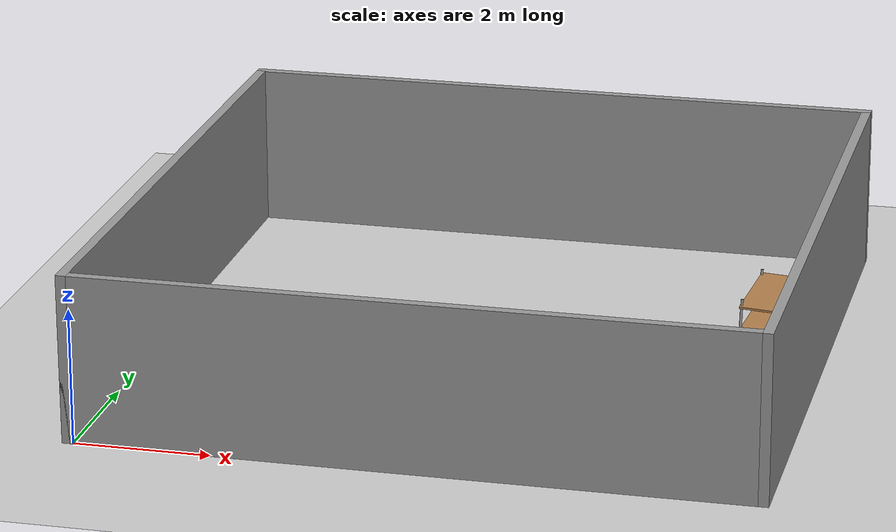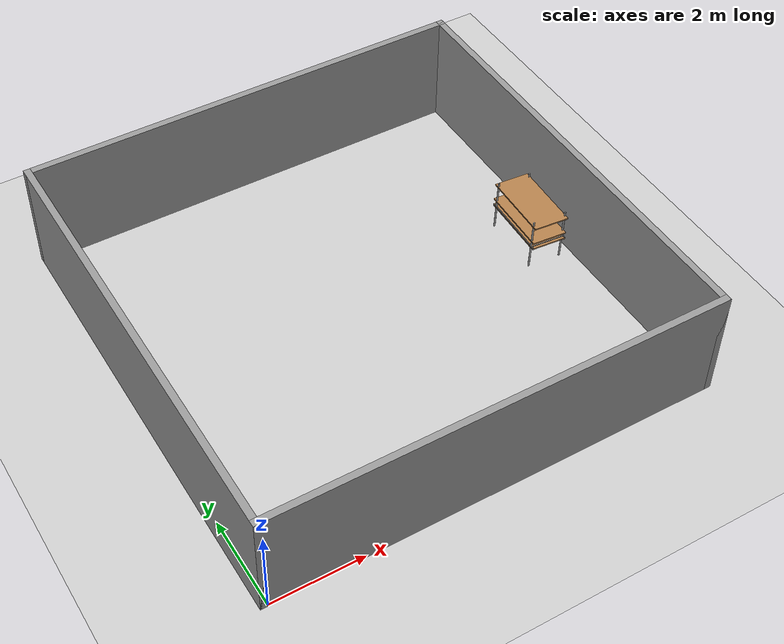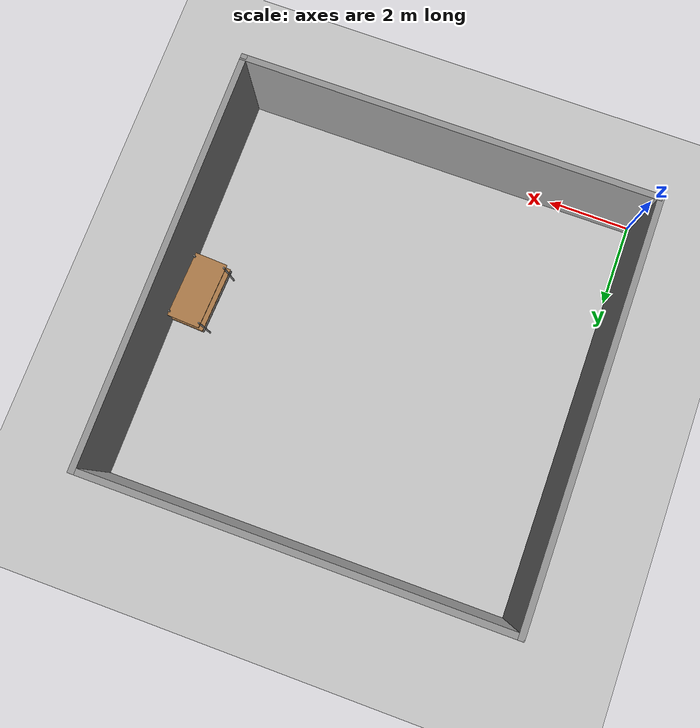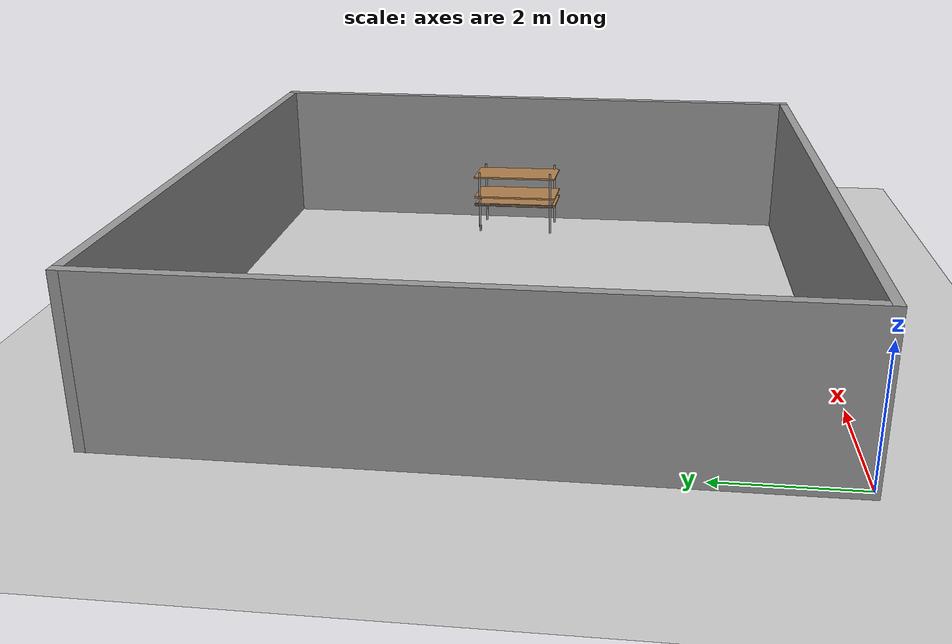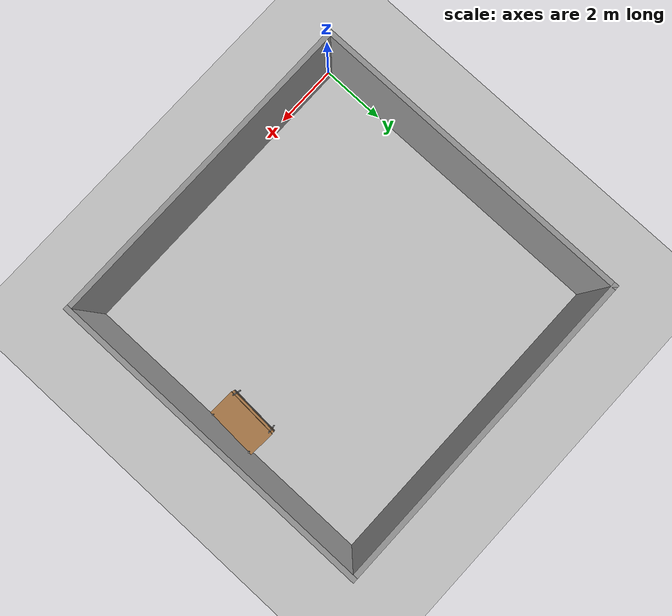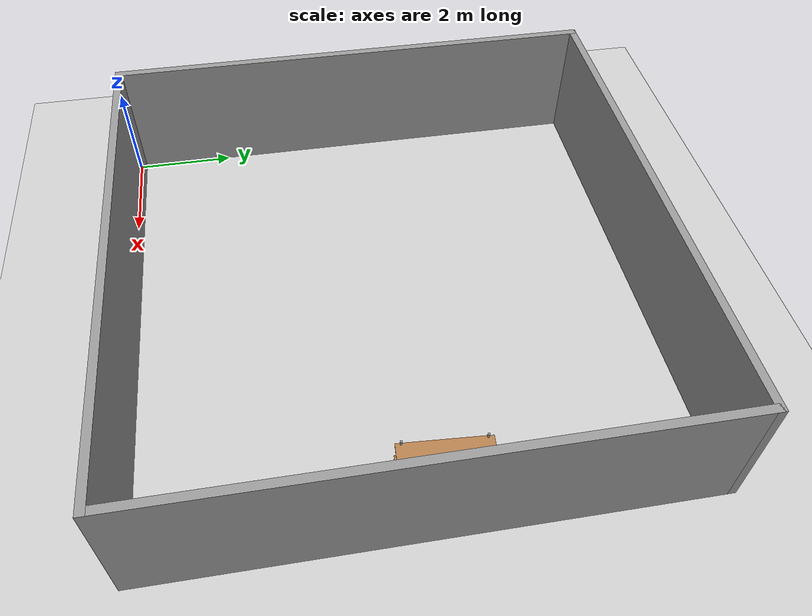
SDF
<sdf version="1.7">
 <world name="default">
  <model name="ground_plane">
   <static>1</static>
   <link name="link">
    <collision name="collision">
     <geometry><plane><normal>0 0 1</normal><size>100 100</size></plane></geometry>
     <surface><friction><ode><mu>100</mu><mu2>50</mu2></ode></friction></surface>
    </collision>
    <visual name="visual">
     <cast_shadows>0</cast_shadows>
     <geometry><plane><normal>0 0 1</normal><size>100 100</size></plane></geometry>
     <material>
      <script><uri>file://media/materials/scripts/gazebo.material</uri><name>Gazebo/Grey</name></script>
     </material>
    </visual>
   </link>
  </model>
  <model name="inter">
   <pose>4.83241 4.97383 0 0 -0 0</pose>
   <link name="Wall_2">
    <collision name="Wall_2_Collision">
     <geometry><box><size>10 0.15 2.5</size></box></geometry>
     <pose>0 0 1.25 0 -0 0</pose>
    </collision>
    <visual name="Wall_2_Visual">
     <pose>0 0 1.25 0 -0 0</pose>
     <geometry><box><size>10 0.15 2.5</size></box></geometry>
     <material>
      <script><uri>file://media/materials/scripts/gazebo.material</uri><name>Gazebo/Grey</name></script>
      <ambient>1 1 1 1</ambient>
     </material>
     <meta><layer>0</layer></meta>
    </visual>
    <pose>0 -4.925 0 0 -0 0</pose>
   </link>
   <link name="Wall_6">
    <collision name="Wall_6_Collision">
     <geometry><box><size>10 0.15 2.5</size></box></geometry>
     <pose>0 0 1.25 0 -0 0</pose>
    </collision>
    <visual name="Wall_6_Visual">
     <pose>0 0 1.25 0 -0 0</pose>
     <geometry><box><size>10 0.15 2.5</size></box></geometry>
     <material>
      <script><uri>file://media/materials/scripts/gazebo.material</uri><name>Gazebo/Grey</name></script>
      <ambient>1 1 1 1</ambient>
     </material>
     <meta><layer>0</layer></meta>
    </visual>
    <pose>4.925 0 0 0 -0 1.5708</pose>
   </link>
   <link name="Wall_7">
    <collision name="Wall_7_Collision">
     <geometry><box><size>10 0.15 2.5</size></box></geometry>
     <pose>0 0 1.25 0 -0 0</pose>
    </collision>
    <visual name="Wall_7_Visual">
     <pose>0 0 1.25 0 -0 0</pose>
     <geometry><box><size>10 0.15 2.5</size></box></geometry>
     <material>
      <script><uri>file://media/materials/scripts/gazebo.material</uri><name>Gazebo/Grey</name></script>
      <ambient>1 1 1 1</ambient>
     </material>
     <meta><layer>0</layer></meta>
    </visual>
    <pose>0 4.925 0 0 -0 3.14159</pose>
   </link>
   <link name="Wall_8">
    <collision name="Wall_8_Collision">
     <geometry><box><size>10 0.15 2.5</size></box></geometry>
     <pose>0 0 1.25 0 -0 0</pose>
    </collision>
    <visual name="Wall_8_Visual">
     <pose>0 0 1.25 0 -0 0</pose>
     <geometry><box><size>10 0.15 2.5</size></box></geometry>
     <material>
      <script><uri>file://media/materials/scripts/gazebo.material</uri><name>Gazebo/Grey</name></script>
      <ambient>1 1 1 1</ambient>
     </material>
     <meta><layer>0</layer></meta>
    </visual>
    <pose>-4.925 0 0 0 -0 -1.5708</pose>
   </link>
   <static>1</static>
  </model>
  <model name="warehouse_pallet">
   <link name="warehouse_pallet::link">
    <pose>0 0 -0 0 -0 1.57</pose>
    <inertial>
     <inertia>
      <ixx>0.0267042</ixx>
      <ixy>0</ixy>
      <ixz>0</ixz>
      <iyy>0.0937875</iyy>
      <iyz>0</iyz>
      <izz>0.120417</izz>
     </inertia>
     <mass>0.1</mass>
    </inertial>
    <visual name="holding1_visual">
     <pose>0 0.39 0.45 0 -0 0</pose>
     <geometry><box><size>1.6 0.02 0.05</size></box></geometry>
     <material>
      <script><uri>file://media/materials/scripts/gazebo.material</uri><name>Gazebo/Grey</name></script>
      <shader type="pixel"><normal_map>__default__</normal_map></shader>
      <ambient>0.3 0.3 0.3 1</ambient>
      <diffuse>0.7 0.7 0.7 1</diffuse>
      <specular>0.01 0.01 0.01 1</specular>
      <emissive>0 0 0 1</emissive>
     </material>
    </visual>
    <visual name="front_left_leg">
     <pose>0.7 0.38 0.5 0 -0 0</pose>
     <geometry><cylinder><radius>0.02</radius><length>1.2</length></cylinder></geometry>
     <material>
      <script><uri>file://media/materials/scripts/gazebo.material</uri><name>Gazebo/Grey</name></script>
      <shader type="pixel"><normal_map>__default__</normal_map></shader>
      <ambient>0.3 0.3 0.3 1</ambient>
      <diffuse>0.7 0.7 0.7 1</diffuse>
      <specular>0.01 0.01 0.01 1</specular>
      <emissive>0 0 0 1</emissive>
     </material>
    </visual>
    <visual name="front_right_leg">
     <pose>0.7 -0.38 0.5 0 -0 0</pose>
     <geometry><cylinder><radius>0.02</radius><length>1.2</length></cylinder></geometry>
     <material>
      <script><uri>file://media/materials/scripts/gazebo.material</uri><name>Gazebo/Grey</name></script>
      <shader type="pixel"><normal_map>__default__</normal_map></shader>
      <ambient>0.3 0.3 0.3 1</ambient>
      <diffuse>0.7 0.7 0.7 1</diffuse>
      <specular>0.01 0.01 0.01 1</specular>
      <emissive>0 0 0 1</emissive>
     </material>
    </visual>
    <visual name="back_right_leg">
     <pose>-0.7 -0.38 0.5 0 -0 0</pose>
     <geometry><cylinder><radius>0.02</radius><length>1.2</length></cylinder></geometry>
     <material>
      <script><uri>file://media/materials/scripts/gazebo.material</uri><name>Gazebo/Grey</name></script>
      <shader type="pixel"><normal_map>__default__</normal_map></shader>
      <ambient>0.3 0.3 0.3 1</ambient>
      <diffuse>0.7 0.7 0.7 1</diffuse>
      <specular>0.01 0.01 0.01 1</specular>
      <emissive>0 0 0 1</emissive>
     </material>
    </visual>
    <visual name="back_left_leg">
     <pose>-0.7 0.38 0.5 0 -0 0</pose>
     <geometry><cylinder><radius>0.02</radius><length>1.2</length></cylinder></geometry>
     <material>
      <script><uri>file://media/materials/scripts/gazebo.material</uri><name>Gazebo/Grey</name></script>
      <shader type="pixel"><normal_map>__default__</normal_map></shader>
      <ambient>0.3 0.3 0.3 1</ambient>
      <diffuse>0.7 0.7 0.7 1</diffuse>
      <specular>0.01 0.01 0.01 1</specular>
      <emissive>0 0 0 1</emissive>
     </material>
    </visual>
    <visual name="visual1">
     <pose>0 0 0.45 0 -0 0</pose>
     <geometry><box><size>1.6 0.8 0.03</size></box></geometry>
     <material>
      <script><uri>file://media/materials/scripts/gazebo.material</uri><name>Gazebo/Wood</name></script>
      <shader type="pixel"><normal_map>__default__</normal_map></shader>
      <ambient>1 1 1 1</ambient>
      <diffuse>1 1 1 1</diffuse>
      <specular>0.2 0.2 0.2 1</specular>
      <emissive>0 0 0 1</emissive>
     </material>
    </visual>
    <visual name="holding2_visual">
     <pose>0 -0.39 0.45 0 -0 0</pose>
     <geometry><box><size>1.6 0.02 0.05</size></box></geometry>
     <material>
      <script><uri>file://media/materials/scripts/gazebo.material</uri><name>Gazebo/Grey</name></script>
      <shader type="pixel"><normal_map>__default__</normal_map></shader>
      <ambient>0.3 0.3 0.3 1</ambient>
      <diffuse>0.7 0.7 0.7 1</diffuse>
      <specular>0.01 0.01 0.01 1</specular>
      <emissive>0 0 0 1</emissive>
     </material>
    </visual>
    <visual name="holding3_visual">
     <pose>0.735 0 0.45 0 -0 1.57</pose>
     <geometry><box><size>0.8 0.02 0.05</size></box></geometry>
     <material>
      <script><uri>file://media/materials/scripts/gazebo.material</uri><name>Gazebo/Grey</name></script>
      <shader type="pixel"><normal_map>__default__</normal_map></shader>
      <ambient>0.3 0.3 0.3 1</ambient>
      <diffuse>0.7 0.7 0.7 1</diffuse>
      <specular>0.01 0.01 0.01 1</specular>
      <emissive>0 0 0 1</emissive>
     </material>
    </visual>
    <visual name="holding4_visual">
     <pose>-0.735 0 0.45 0 -0 1.57</pose>
     <geometry><box><size>0.8 0.02 0.05</size></box></geometry>
     <material>
      <script><uri>file://media/materials/scripts/gazebo.material</uri><name>Gazebo/Grey</name></script>
      <shader type="pixel"><normal_map>__default__</normal_map></shader>
      <ambient>0.3 0.3 0.3 1</ambient>
      <diffuse>0.7 0.7 0.7 1</diffuse>
      <specular>0.01 0.01 0.01 1</specular>
      <emissive>0 0 0 1</emissive>
     </material>
    </visual>
    <visual name="visual2">
     <pose>0 0 0.6 0 -0 0</pose>
     <geometry><box><size>1.6 0.8 0.03</size></box></geometry>
     <material>
      <script><uri>file://media/materials/scripts/gazebo.material</uri><name>Gazebo/Wood</name></script>
      <shader type="pixel"><normal_map>__default__</normal_map></shader>
      <ambient>1 1 1 1</ambient>
      <diffuse>1 1 1 1</diffuse>
      <specular>0.2 0.2 0.2 1</specular>
      <emissive>0 0 0 1</emissive>
     </material>
    </visual>
    <visual name="visual3">
     <pose>0 0 1 0 -0 0</pose>
     <geometry><box><size>1.6 0.8 0.03</size></box></geometry>
     <material>
      <script><uri>file://media/materials/scripts/gazebo.material</uri><name>Gazebo/Wood</name></script>
      <shader type="pixel"><normal_map>__default__</normal_map></shader>
      <ambient>1 1 1 1</ambient>
      <diffuse>1 1 1 1</diffuse>
      <specular>0.2 0.2 0.2 1</specular>
      <emissive>0 0 0 1</emissive>
     </material>
    </visual>
    <collision name="surface1">
     <pose>0 0 0.45 0 -0 0</pose>
     <geometry><box><size>1.6 0.8 0.03</size></box></geometry>
     <surface>
      <friction>
       <ode><mu>20</mu><mu2>20</mu2><fdir1>0 0 0</fdir1><slip1>0</slip1><slip2>0</slip2></ode>
       <torsional>
        <coefficient>1</coefficient>
        <patch_radius>0</patch_radius>
        <surface_radius>0</surface_radius>
        <use_patch_radius>1</use_patch_radius>
        <ode><slip>0</slip></ode>
       </torsional>
      </friction>
      <bounce><restitution_coefficient>0</restitution_coefficient><threshold>1e+06</threshold></bounce>
      <contact>
       <collide_without_contact>0</collide_without_contact>
       <collide_without_contact_bitmask>1</collide_without_contact_bitmask>
       <collide_bitmask>1</collide_bitmask>
       <ode>
        <soft_cfm>0</soft_cfm>
        <soft_erp>0.2</soft_erp>
        <kp>1e+13</kp>
        <kd>1</kd>
        <max_vel>0.01</max_vel>
        <min_depth>0</min_depth>
       </ode>
       <bullet>
        <split_impulse>1</split_impulse>
        <split_impulse_penetration_threshold>-0.01</split_impulse_penetration_threshold>
        <soft_cfm>0</soft_cfm>
        <soft_erp>0.2</soft_erp>
        <kp>1e+13</kp>
        <kd>1</kd>
       </bullet>
      </contact>
     </surface>
    </collision>
    <collision name="holding1_collision">
     <pose>0 0.39 0.45 0 -0 0</pose>
     <geometry><box><size>1.6 0.02 0.05</size></box></geometry>
     <surface>
      <friction>
       <ode><mu>1e+09</mu><mu2>1e+09</mu2><fdir1>0 0 0</fdir1><slip1>0</slip1><slip2>0</slip2></ode>
       <torsional>
        <coefficient>1</coefficient>
        <patch_radius>0</patch_radius>
        <surface_radius>0</surface_radius>
        <use_patch_radius>1</use_patch_radius>
        <ode><slip>0</slip></ode>
       </torsional>
      </friction>
      <bounce><restitution_coefficient>0</restitution_coefficient><threshold>1e+06</threshold></bounce>
      <contact>
       <collide_without_contact>0</collide_without_contact>
       <collide_without_contact_bitmask>1</collide_without_contact_bitmask>
       <collide_bitmask>1</collide_bitmask>
       <ode>
        <soft_cfm>0</soft_cfm>
        <soft_erp>0.2</soft_erp>
        <kp>1e+13</kp>
        <kd>1</kd>
        <max_vel>0.01</max_vel>
        <min_depth>0</min_depth>
       </ode>
       <bullet>
        <split_impulse>1</split_impulse>
        <split_impulse_penetration_threshold>-0.01</split_impulse_penetration_threshold>
        <soft_cfm>0</soft_cfm>
        <soft_erp>0.2</soft_erp>
        <kp>1e+13</kp>
        <kd>1</kd>
       </bullet>
      </contact>
     </surface>
    </collision>
    <collision name="holding2_collision">
     <pose>0 -0.39 0.45 0 -0 0</pose>
     <geometry><box><size>1.6 0.02 0.05</size></box></geometry>
     <surface>
      <friction>
       <ode><mu>1e+09</mu><mu2>1e+09</mu2><fdir1>0 0 0</fdir1><slip1>0</slip1><slip2>0</slip2></ode>
       <torsional>
        <coefficient>1</coefficient>
        <patch_radius>0</patch_radius>
        <surface_radius>0</surface_radius>
        <use_patch_radius>1</use_patch_radius>
        <ode><slip>0</slip></ode>
       </torsional>
      </friction>
      <bounce><restitution_coefficient>0</restitution_coefficient><threshold>1e+06</threshold></bounce>
      <contact>
       <collide_without_contact>0</collide_without_contact>
       <collide_without_contact_bitmask>1</collide_without_contact_bitmask>
       <collide_bitmask>1</collide_bitmask>
       <ode>
        <soft_cfm>0</soft_cfm>
        <soft_erp>0.2</soft_erp>
        <kp>1e+13</kp>
        <kd>1</kd>
        <max_vel>0.01</max_vel>
        <min_depth>0</min_depth>
       </ode>
       <bullet>
        <split_impulse>1</split_impulse>
        <split_impulse_penetration_threshold>-0.01</split_impulse_penetration_threshold>
        <soft_cfm>0</soft_cfm>
        <soft_erp>0.2</soft_erp>
        <kp>1e+13</kp>
        <kd>1</kd>
       </bullet>
      </contact>
     </surface>
    </collision>
    <collision name="holding3_collision">
     <pose>0.735 0 0.45 0 -0 1.57</pose>
     <geometry><box><size>0.8 0.02 0.05</size></box></geometry>
     <surface>
      <friction>
       <ode><mu>1e+09</mu><mu2>1e+09</mu2><fdir1>0 0 0</fdir1><slip1>0</slip1><slip2>0</slip2></ode>
       <torsional>
        <coefficient>1</coefficient>
        <patch_radius>0</patch_radius>
        <surface_radius>0</surface_radius>
        <use_patch_radius>1</use_patch_radius>
        <ode><slip>0</slip></ode>
       </torsional>
      </friction>
      <bounce><restitution_coefficient>0</restitution_coefficient><threshold>1e+06</threshold></bounce>
      <contact>
       <collide_without_contact>0</collide_without_contact>
       <collide_without_contact_bitmask>1</collide_without_contact_bitmask>
       <collide_bitmask>1</collide_bitmask>
       <ode>
        <soft_cfm>0</soft_cfm>
        <soft_erp>0.2</soft_erp>
        <kp>1e+13</kp>
        <kd>1</kd>
        <max_vel>0.01</max_vel>
        <min_depth>0</min_depth>
       </ode>
       <bullet>
        <split_impulse>1</split_impulse>
        <split_impulse_penetration_threshold>-0.01</split_impulse_penetration_threshold>
        <soft_cfm>0</soft_cfm>
        <soft_erp>0.2</soft_erp>
        <kp>1e+13</kp>
        <kd>1</kd>
       </bullet>
      </contact>
     </surface>
    </collision>
    <collision name="holding4_collision">
     <pose>-0.735 0 0.45 0 -0 1.57</pose>
     <geometry><box><size>0.8 0.02 0.05</size></box></geometry>
     <surface>
      <friction>
       <ode><mu>1e+09</mu><mu2>1e+09</mu2><fdir1>0 0 0</fdir1><slip1>0</slip1><slip2>0</slip2></ode>
       <torsional>
        <coefficient>1</coefficient>
        <patch_radius>0</patch_radius>
        <surface_radius>0</surface_radius>
        <use_patch_radius>1</use_patch_radius>
        <ode><slip>0</slip></ode>
       </torsional>
      </friction>
      <bounce><restitution_coefficient>0</restitution_coefficient><threshold>1e+06</threshold></bounce>
      <contact>
       <collide_without_contact>0</collide_without_contact>
       <collide_without_contact_bitmask>1</collide_without_contact_bitmask>
       <collide_bitmask>1</collide_bitmask>
       <ode>
        <soft_cfm>0</soft_cfm>
        <soft_erp>0.2</soft_erp>
        <kp>1e+13</kp>
        <kd>1</kd>
        <max_vel>0.01</max_vel>
        <min_depth>0</min_depth>
       </ode>
       <bullet>
        <split_impulse>1</split_impulse>
        <split_impulse_penetration_threshold>-0.01</split_impulse_penetration_threshold>
        <soft_cfm>0</soft_cfm>
        <soft_erp>0.2</soft_erp>
        <kp>1e+13</kp>
        <kd>1</kd>
       </bullet>
      </contact>
     </surface>
    </collision>
    <collision name="surface3">
     <pose>0 0 1 0 -0 0</pose>
     <geometry><box><size>1.6 0.8 0.03</size></box></geometry>
     <surface>
      <friction>
       <ode><mu>2.5</mu><mu2>2.5</mu2><fdir1>0 0 0</fdir1><slip1>0</slip1><slip2>0</slip2></ode>
       <torsional>
        <coefficient>1</coefficient>
        <patch_radius>0</patch_radius>
        <surface_radius>0</surface_radius>
        <use_patch_radius>1</use_patch_radius>
        <ode><slip>0</slip></ode>
       </torsional>
      </friction>
      <bounce><restitution_coefficient>0</restitution_coefficient><threshold>1e+06</threshold></bounce>
      <contact>
       <collide_without_contact>0</collide_without_contact>
       <collide_without_contact_bitmask>1</collide_without_contact_bitmask>
       <collide_bitmask>1</collide_bitmask>
       <ode>
        <soft_cfm>0</soft_cfm>
        <soft_erp>0.2</soft_erp>
        <kp>1e+13</kp>
        <kd>1</kd>
        <max_vel>0.01</max_vel>
        <min_depth>0</min_depth>
       </ode>
       <bullet>
        <split_impulse>1</split_impulse>
        <split_impulse_penetration_threshold>-0.01</split_impulse_penetration_threshold>
        <soft_cfm>0</soft_cfm>
        <soft_erp>0.2</soft_erp>
        <kp>1e+13</kp>
        <kd>1</kd>
       </bullet>
      </contact>
     </surface>
    </collision>
    <collision name="surface2">
     <pose>0 0 0.6 0 -0 0</pose>
     <geometry><box><size>1.6 0.8 0.03</size></box></geometry>
     <surface>
      <friction>
       <ode><mu>2.5</mu><mu2>2.5</mu2><fdir1>0 0 0</fdir1><slip1>0</slip1><slip2>0</slip2></ode>
       <torsional>
        <coefficient>1</coefficient>
        <patch_radius>0</patch_radius>
        <surface_radius>0</surface_radius>
        <use_patch_radius>1</use_patch_radius>
        <ode><slip>0</slip></ode>
       </torsional>
      </friction>
      <bounce><restitution_coefficient>0</restitution_coefficient><threshold>1e+06</threshold></bounce>
      <contact>
       <collide_without_contact>0</collide_without_contact>
       <collide_without_contact_bitmask>1</collide_without_contact_bitmask>
       <collide_bitmask>1</collide_bitmask>
       <ode>
        <soft_cfm>0</soft_cfm>
        <soft_erp>0.2</soft_erp>
        <kp>1e+13</kp>
        <kd>1</kd>
        <max_vel>0.01</max_vel>
        <min_depth>0</min_depth>
       </ode>
       <bullet>
        <split_impulse>1</split_impulse>
        <split_impulse_penetration_threshold>-0.01</split_impulse_penetration_threshold>
        <soft_cfm>0</soft_cfm>
        <soft_erp>0.2</soft_erp>
        <kp>1e+13</kp>
        <kd>1</kd>
       </bullet>
      </contact>
     </surface>
    </collision>
    <collision name="front_right_leg">
     <pose>0.7 -0.38 0.5 0 -0 0</pose>
     <geometry><cylinder><radius>0.02</radius><length>1</length></cylinder></geometry>
     <surface>
      <friction>
       <ode><mu>0.1</mu><mu2>0.1</mu2><fdir1>0 0 0</fdir1><slip1>0</slip1><slip2>0</slip2></ode>
       <torsional>
        <coefficient>1</coefficient>
        <patch_radius>0</patch_radius>
        <surface_radius>0</surface_radius>
        <use_patch_radius>1</use_patch_radius>
        <ode><slip>0</slip></ode>
       </torsional>
      </friction>
      <bounce><restitution_coefficient>0</restitution_coefficient><threshold>1e+06</threshold></bounce>
      <contact>
       <collide_without_contact>0</collide_without_contact>
       <collide_without_contact_bitmask>1</collide_without_contact_bitmask>
       <collide_bitmask>1</collide_bitmask>
       <ode>
        <soft_cfm>0</soft_cfm>
        <soft_erp>0.2</soft_erp>
        <kp>1e+13</kp>
        <kd>1</kd>
        <max_vel>0.01</max_vel>
        <min_depth>0</min_depth>
       </ode>
       <bullet>
        <split_impulse>1</split_impulse>
        <split_impulse_penetration_threshold>-0.01</split_impulse_penetration_threshold>
        <soft_cfm>0</soft_cfm>
        <soft_erp>0.2</soft_erp>
        <kp>1e+13</kp>
        <kd>1</kd>
       </bullet>
      </contact>
     </surface>
    </collision>
    <collision name="back_right_leg">
     <pose>-0.7 -0.38 0.5 0 -0 0</pose>
     <geometry><cylinder><radius>0.02</radius><length>1.2</length></cylinder></geometry>
     <surface>
      <friction>
       <ode><mu>0.1</mu><mu2>0.1</mu2><fdir1>0 0 0</fdir1><slip1>0</slip1><slip2>0</slip2></ode>
       <torsional>
        <coefficient>1</coefficient>
        <patch_radius>0</patch_radius>
        <surface_radius>0</surface_radius>
        <use_patch_radius>1</use_patch_radius>
        <ode><slip>0</slip></ode>
       </torsional>
      </friction>
      <bounce><restitution_coefficient>0</restitution_coefficient><threshold>1e+06</threshold></bounce>
      <contact>
       <collide_without_contact>0</collide_without_contact>
       <collide_without_contact_bitmask>1</collide_without_contact_bitmask>
       <collide_bitmask>1</collide_bitmask>
       <ode>
        <soft_cfm>0</soft_cfm>
        <soft_erp>0.2</soft_erp>
        <kp>1e+13</kp>
        <kd>1</kd>
        <max_vel>0.01</max_vel>
        <min_depth>0</min_depth>
       </ode>
       <bullet>
        <split_impulse>1</split_impulse>
        <split_impulse_penetration_threshold>-0.01</split_impulse_penetration_threshold>
        <soft_cfm>0</soft_cfm>
        <soft_erp>0.2</soft_erp>
        <kp>1e+13</kp>
        <kd>1</kd>
       </bullet>
      </contact>
     </surface>
    </collision>
    <collision name="front_left_leg">
     <pose>0.7 0.38 0.5 0 -0 0</pose>
     <geometry><cylinder><radius>0.02</radius><length>1.2</length></cylinder></geometry>
     <surface>
      <friction>
       <ode><mu>0.1</mu><mu2>0.1</mu2><fdir1>0 0 0</fdir1><slip1>0</slip1><slip2>0</slip2></ode>
       <torsional>
        <coefficient>1</coefficient>
        <patch_radius>0</patch_radius>
        <surface_radius>0</surface_radius>
        <use_patch_radius>1</use_patch_radius>
        <ode><slip>0</slip></ode>
       </torsional>
      </friction>
      <bounce><restitution_coefficient>0</restitution_coefficient><threshold>1e+06</threshold></bounce>
      <contact>
       <collide_without_contact>0</collide_without_contact>
       <collide_without_contact_bitmask>1</collide_without_contact_bitmask>
       <collide_bitmask>1</collide_bitmask>
       <ode>
        <soft_cfm>0</soft_cfm>
        <soft_erp>0.2</soft_erp>
        <kp>1e+13</kp>
        <kd>1</kd>
        <max_vel>0.01</max_vel>
        <min_depth>0</min_depth>
       </ode>
       <bullet>
        <split_impulse>1</split_impulse>
        <split_impulse_penetration_threshold>-0.01</split_impulse_penetration_threshold>
        <soft_cfm>0</soft_cfm>
        <soft_erp>0.2</soft_erp>
        <kp>1e+13</kp>
        <kd>1</kd>
       </bullet>
      </contact>
     </surface>
    </collision>
    <collision name="back_left_leg">
     <pose>-0.7 0.38 0.5 0 -0 0</pose>
     <geometry><cylinder><radius>0.02</radius><length>1.2</length></cylinder></geometry>
     <surface>
      <friction>
       <ode><mu>0.1</mu><mu2>0.1</mu2><fdir1>0 0 0</fdir1><slip1>0</slip1><slip2>0</slip2></ode>
       <torsional>
        <coefficient>1</coefficient>
        <patch_radius>0</patch_radius>
        <surface_radius>0</surface_radius>
        <use_patch_radius>1</use_patch_radius>
        <ode><slip>0</slip></ode>
       </torsional>
      </friction>
      <bounce><restitution_coefficient>0</restitution_coefficient><threshold>1e+06</threshold></bounce>
      <contact>
       <collide_without_contact>0</collide_without_contact>
       <collide_without_contact_bitmask>1</collide_without_contact_bitmask>
       <collide_bitmask>1</collide_bitmask>
       <ode>
        <soft_cfm>0</soft_cfm>
        <soft_erp>0.2</soft_erp>
        <kp>1e+13</kp>
        <kd>1</kd>
        <max_vel>0.01</max_vel>
        <min_depth>0</min_depth>
       </ode>
       <bullet>
        <split_impulse>1</split_impulse>
        <split_impulse_penetration_threshold>-0.01</split_impulse_penetration_threshold>
        <soft_cfm>0</soft_cfm>
        <soft_erp>0.2</soft_erp>
        <kp>1e+13</kp>
        <kd>1</kd>
       </bullet>
      </contact>
     </surface>
    </collision>
   </link>
   <static>0</static>
   <pose>9.06635 5.19555 0.100764 -0.020547 0.037933 -0.052122</pose>
  </model>
 </world>
</sdf>
